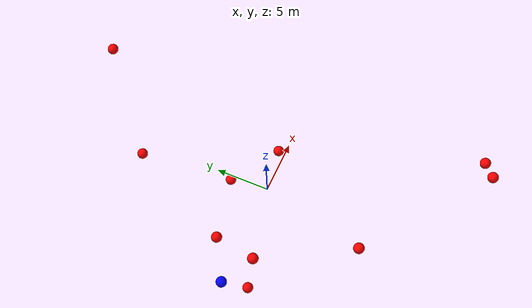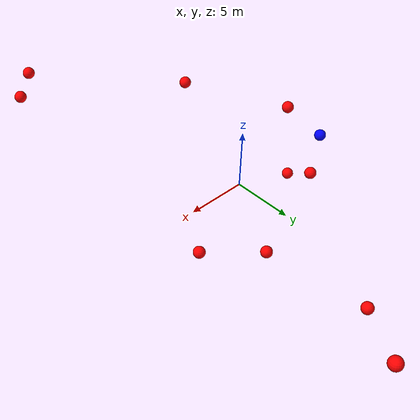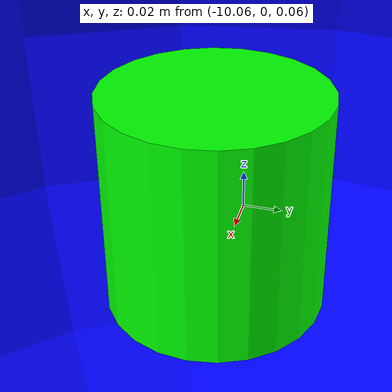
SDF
<?xml version="1.0" ?>
<sdf version="1.8">
    <world name="3d_world">
        <physics name="1ms" type="ode">
            <max_step_size>0.001</max_step_size>
            <real_time_factor>1.0</real_time_factor>
            <real_time_update_rate>1000.0</real_time_update_rate>
        </physics>
        <gravity>0 0 0</gravity>

        <plugin
            filename="gz-sim-physics-system"
            name="gz::sim::v8::systems::Physics">
        </plugin>
        <plugin
            filename="libignition-gazebo-user-commands-system.so"
            name="ignition::gazebo::systems::UserCommands">
        </plugin>
        <plugin
            filename="gz-sim-scene-broadcaster-system"
            name="gz::sim::systems::SceneBroadcaster">
        </plugin>
        <plugin
            filename="gz-sim-sensors-system"
            name="gz::sim::systems::Sensors">
            <render_engine>ogre2</render_engine>
        </plugin>

        <light type="directional" name="sun">
            <cast_shadows>true</cast_shadows>
            <pose>0 0 10 0 0 0</pose>
            <diffuse>0.8 0.8 0.8 1</diffuse>
            <specular>0.2 0.2 0.2 1</specular>
            <attenuation>
                <range>1000</range>
                <constant>0.9</constant>
                <linear>0.01</linear>
                <quadratic>0.001</quadratic>
            </attenuation>
            <direction>-0.5 0.1 -0.9</direction>
        </light>

        <!-- AGENTE -->
        <model name='agente' canonical_link='chassis'>
            <pose relative_to='world'>-10.0 0 0.0 0 0 0</pose>
            <link name='chassis'>
                <pose relative_to='__model__'>0.0 0 0.0 0 0 0</pose>
                <inertial>
                    <mass>1.14395</mass>
                    <inertia>
                        <ixx>0.095329</ixx>
                        <ixy>0</ixy>
                        <ixz>0</ixz>
                        <iyy>0.381317</iyy>
                        <iyz>0</iyz>
                        <izz>0.476646</izz>
                    </inertia>
                </inertial>
                <visual name='visual'>
                    <geometry>
                        <sphere>
                            <radius>0.5</radius>
                        </sphere>
                    </geometry>
                    <material>
                        <ambient>0.0 0.0 1.0 1</ambient>
                        <diffuse>0.0 0.0 1.0 1</diffuse>
                        <specular>0.0 0.0 1.0 1</specular>
                    </material>
                </visual>
                <collision name='collision'>
                    <geometry>
                        <sphere>
                            <radius>0.5</radius>
                        </sphere>
                    </geometry>
                </collision>
                <enable_gravity>false</enable_gravity>
            </link>

            <link name='lidar_link'>
                <pose relative_to='chassis'>0.0 0 0.1 0 0 0</pose>
                <inertial>
                    <mass>0.1</mass>
                    <inertia>
                        <ixx>0.000166667</ixx>
                        <iyy>0.000166667</iyy>
                        <izz>0.000166667</izz>
                    </inertia>
                </inertial>
                <collision name='collision'>
                    <geometry>
                        <cylinder>
                            <radius>0.05</radius>
                            <length>0.1</length>
                        </cylinder>
                    </geometry>
                </collision>
                <visual name='visual'>
                    <geometry>
                        <cylinder>
                            <radius>0.05</radius>
                            <length>0.1</length>
                        </cylinder>
                    </geometry>
                    <material>
                        <ambient>0.0 1.0 0.0 1</ambient>
                        <diffuse>0.0 1.0 0.0 1</diffuse>
                        <specular>0.0 1.0 0.0 1</specular>
                    </material>
                </visual>
                <sensor name="lidar" type="gpu_lidar">
                    <topic>scan</topic>
                    <update_rate>10</update_rate>
                    <lidar>
                        <scan>
                            <horizontal>
                                <samples>5000</samples>
                                <resolution>1</resolution>
                                <min_angle>-3.14159</min_angle>
                                <max_angle>3.14159</max_angle>
                            </horizontal>
                        </scan>
                        <range>
                            <min>0.1</min>
                            <max>10.0</max>
                            <resolution>0.01</resolution>
                        </range>
                    </lidar>
                    <visualize>true</visualize>
                    <always_on>true</always_on>
                    <update_rate>10</update_rate>
                    <pose_frame>lidar</pose_frame>
                </sensor>
                <enable_gravity>false</enable_gravity>
            </link>

            <joint name="lidar_joint" type="fixed">
                <parent>chassis</parent>
                <child>lidar_link</child>
            </joint>

            <plugin
                filename="ignition-gazebo-joint-state-publisher-system"
                name="ignition::gazebo::systems::JointStatePublisher">
            </plugin>
            <plugin
                filename="ignition-gazebo-odometry-publisher-system"
                name="ignition::gazebo::systems::OdometryPublisher">
                <dimensions>3</dimensions>
            </plugin>
            <plugin
                filename="ignition-gazebo-velocity-control-system"
                name="ignition::gazebo::systems::VelocityControl">
                <initial_linear>0.0 0 0</initial_linear>
                <initial_angular>0 0 0.0</initial_angular>
            </plugin>
            <plugin
                filename="libignition-gazebo-pose-publisher-system.so"
                name="ignition::gazebo::systems::PosePublisher">
                <topic>/agente/pose</topic>
                <frame_id>agente</frame_id>
                <update_rate>30</update_rate>
            </plugin>
        </model>

        <!-- OBSTACLE 1 -->
        <model name='obstacle_1' canonical_link='obstacle'>
            <static>false</static>
            <pose relative_to='world'>-3.48 -10.38 3.23 0 0 0</pose>
            <link name='obstacle'>
                <pose relative_to='__model__'>0.0 0 0.0 0 0 0</pose>
                <visual name='visual'>
                    <geometry>
                        <sphere>
                            <radius>0.50</radius>
                        </sphere>
                    </geometry>
                    <material>
                        <ambient>1.0 0.0 0.0 1</ambient>
                        <diffuse>1.0 0.0 0.0 1</diffuse>
                        <specular>1.0 0.0 0.0 1</specular>
                    </material>
                </visual>
                <collision name='collision'>
                    <geometry>
                        <sphere>
                            <radius>0.50</radius>
                        </sphere>
                    </geometry>
                </collision>
                <enable_gravity>false</enable_gravity>
            </link>

            <plugin
                filename="ignition-gazebo-velocity-control-system"
                name="ignition::gazebo::systems::VelocityControl">
                <initial_linear>-0.01 1.91 -0.59</initial_linear>
                <initial_angular>0 0 0</initial_angular>
            </plugin>

            <plugin
                filename="ignition-gazebo-odometry-publisher-system"
                name="ignition::gazebo::systems::OdometryPublisher">
                <dimensions>3</dimensions>
            </plugin>
        </model>

        <!-- OBSTACLE 2 -->
        <model name='obstacle_2' canonical_link='obstacle'>
            <static>false</static>
            <pose relative_to='world'>1.16 4.45 -3.55 0 0 0</pose>
            <link name='obstacle'>
                <pose relative_to='__model__'>0.0 0 0.0 0 0 0</pose>
                <visual name='visual'>
                    <geometry>
                        <sphere>
                            <radius>0.50</radius>
                        </sphere>
                    </geometry>
                    <material>
                        <ambient>1.0 0.0 0.0 1</ambient>
                        <diffuse>1.0 0.0 0.0 1</diffuse>
                        <specular>1.0 0.0 0.0 1</specular>
                    </material>
                </visual>
                <collision name='collision'>
                    <geometry>
                        <sphere>
                            <radius>0.50</radius>
                        </sphere>
                    </geometry>
                </collision>
                <enable_gravity>false</enable_gravity>
            </link>

            <plugin
                filename="ignition-gazebo-velocity-control-system"
                name="ignition::gazebo::systems::VelocityControl">
                <initial_linear>0.33 -0.86 0.69</initial_linear>
                <initial_angular>0 0 0</initial_angular>
            </plugin>

            <plugin
                filename="ignition-gazebo-odometry-publisher-system"
                name="ignition::gazebo::systems::OdometryPublisher">
                <dimensions>3</dimensions>
            </plugin>
        </model>

        <!-- OBSTACLE 3 -->
        <model name='obstacle_3' canonical_link='obstacle'>
            <static>false</static>
            <pose relative_to='world'>7.02 -18.87 4.57 0 0 0</pose>
            <link name='obstacle'>
                <pose relative_to='__model__'>0.0 0 0.0 0 0 0</pose>
                <visual name='visual'>
                    <geometry>
                        <sphere>
                            <radius>0.50</radius>
                        </sphere>
                    </geometry>
                    <material>
                        <ambient>1.0 0.0 0.0 1</ambient>
                        <diffuse>1.0 0.0 0.0 1</diffuse>
                        <specular>1.0 0.0 0.0 1</specular>
                    </material>
                </visual>
                <collision name='collision'>
                    <geometry>
                        <sphere>
                            <radius>0.50</radius>
                        </sphere>
                    </geometry>
                </collision>
                <enable_gravity>false</enable_gravity>
            </link>

            <plugin
                filename="ignition-gazebo-velocity-control-system"
                name="ignition::gazebo::systems::VelocityControl">
                <initial_linear>-0.91 1.73 -0.42</initial_linear>
                <initial_angular>0 0 0</initial_angular>
            </plugin>

            <plugin
                filename="ignition-gazebo-odometry-publisher-system"
                name="ignition::gazebo::systems::OdometryPublisher">
                <dimensions>3</dimensions>
            </plugin>
        </model>

        <!-- OBSTACLE 4 -->
        <model name='obstacle_4' canonical_link='obstacle'>
            <static>false</static>
            <pose relative_to='world'>0.15 13.43 -3.17 0 0 0</pose>
            <link name='obstacle'>
                <pose relative_to='__model__'>0.0 0 0.0 0 0 0</pose>
                <visual name='visual'>
                    <geometry>
                        <sphere>
                            <radius>0.50</radius>
                        </sphere>
                    </geometry>
                    <material>
                        <ambient>1.0 0.0 0.0 1</ambient>
                        <diffuse>1.0 0.0 0.0 1</diffuse>
                        <specular>1.0 0.0 0.0 1</specular>
                    </material>
                </visual>
                <collision name='collision'>
                    <geometry>
                        <sphere>
                            <radius>0.50</radius>
                        </sphere>
                    </geometry>
                </collision>
                <enable_gravity>false</enable_gravity>
            </link>

            <plugin
                filename="ignition-gazebo-velocity-control-system"
                name="ignition::gazebo::systems::VelocityControl">
                <initial_linear>-0.16 -1.94 0.46</initial_linear>
                <initial_angular>0 0 0</initial_angular>
            </plugin>

            <plugin
                filename="ignition-gazebo-odometry-publisher-system"
                name="ignition::gazebo::systems::OdometryPublisher">
                <dimensions>3</dimensions>
            </plugin>
        </model>

        <!-- OBSTACLE 5 -->
        <model name='obstacle_5' canonical_link='obstacle'>
            <static>false</static>
            <pose relative_to='world'>5.57 1.36 -2.95 0 0 0</pose>
            <link name='obstacle'>
                <pose relative_to='__model__'>0.0 0 0.0 0 0 0</pose>
                <visual name='visual'>
                    <geometry>
                        <sphere>
                            <radius>0.50</radius>
                        </sphere>
                    </geometry>
                    <material>
                        <ambient>1.0 0.0 0.0 1</ambient>
                        <diffuse>1.0 0.0 0.0 1</diffuse>
                        <specular>1.0 0.0 0.0 1</specular>
                    </material>
                </visual>
                <collision name='collision'>
                    <geometry>
                        <sphere>
                            <radius>0.50</radius>
                        </sphere>
                    </geometry>
                </collision>
                <enable_gravity>false</enable_gravity>
            </link>

            <plugin
                filename="ignition-gazebo-velocity-control-system"
                name="ignition::gazebo::systems::VelocityControl">
                <initial_linear>-1.86 -0.31 0.67</initial_linear>
                <initial_angular>0 0 0</initial_angular>
            </plugin>

            <plugin
                filename="ignition-gazebo-odometry-publisher-system"
                name="ignition::gazebo::systems::OdometryPublisher">
                <dimensions>3</dimensions>
            </plugin>
        </model>

        <!-- OBSTACLE 6 -->
        <model name='obstacle_6' canonical_link='obstacle'>
            <static>false</static>
            <pose relative_to='world'>-6.00 2.40 -0.62 0 0 0</pose>
            <link name='obstacle'>
                <pose relative_to='__model__'>0.0 0 0.0 0 0 0</pose>
                <visual name='visual'>
                    <geometry>
                        <sphere>
                            <radius>0.50</radius>
                        </sphere>
                    </geometry>
                    <material>
                        <ambient>1.0 0.0 0.0 1</ambient>
                        <diffuse>1.0 0.0 0.0 1</diffuse>
                        <specular>1.0 0.0 0.0 1</specular>
                    </material>
                </visual>
                <collision name='collision'>
                    <geometry>
                        <sphere>
                            <radius>0.50</radius>
                        </sphere>
                    </geometry>
                </collision>
                <enable_gravity>false</enable_gravity>
            </link>

            <plugin
                filename="ignition-gazebo-velocity-control-system"
                name="ignition::gazebo::systems::VelocityControl">
                <initial_linear>1.78 -0.44 0.11</initial_linear>
                <initial_angular>0 0 0</initial_angular>
            </plugin>

            <plugin
                filename="ignition-gazebo-odometry-publisher-system"
                name="ignition::gazebo::systems::OdometryPublisher">
                <dimensions>3</dimensions>
            </plugin>
        </model>

        <!-- OBSTACLE 7 -->
        <model name='obstacle_7' canonical_link='obstacle'>
            <static>false</static>
            <pose relative_to='world'>6.79 19.28 2.40 0 0 0</pose>
            <link name='obstacle'>
                <pose relative_to='__model__'>0.0 0 0.0 0 0 0</pose>
                <visual name='visual'>
                    <geometry>
                        <sphere>
                            <radius>0.50</radius>
                        </sphere>
                    </geometry>
                    <material>
                        <ambient>1.0 0.0 0.0 1</ambient>
                        <diffuse>1.0 0.0 0.0 1</diffuse>
                        <specular>1.0 0.0 0.0 1</specular>
                    </material>
                </visual>
                <collision name='collision'>
                    <geometry>
                        <sphere>
                            <radius>0.50</radius>
                        </sphere>
                    </geometry>
                </collision>
                <enable_gravity>false</enable_gravity>
            </link>

            <plugin
                filename="ignition-gazebo-velocity-control-system"
                name="ignition::gazebo::systems::VelocityControl">
                <initial_linear>-0.26 -1.97 -0.24</initial_linear>
                <initial_angular>0 0 0</initial_angular>
            </plugin>

            <plugin
                filename="ignition-gazebo-odometry-publisher-system"
                name="ignition::gazebo::systems::OdometryPublisher">
                <dimensions>3</dimensions>
            </plugin>
        </model>

        <!-- OBSTACLE 8 -->
        <model name='obstacle_8' canonical_link='obstacle'>
            <static>false</static>
            <pose relative_to='world'>-8.10 -1.55 -4.21 0 0 0</pose>
            <link name='obstacle'>
                <pose relative_to='__model__'>0.0 0 0.0 0 0 0</pose>
                <visual name='visual'>
                    <geometry>
                        <sphere>
                            <radius>0.50</radius>
                        </sphere>
                    </geometry>
                    <material>
                        <ambient>1.0 0.0 0.0 1</ambient>
                        <diffuse>1.0 0.0 0.0 1</diffuse>
                        <specular>1.0 0.0 0.0 1</specular>
                    </material>
                </visual>
                <collision name='collision'>
                    <geometry>
                        <sphere>
                            <radius>0.50</radius>
                        </sphere>
                    </geometry>
                </collision>
                <enable_gravity>false</enable_gravity>
            </link>

            <plugin
                filename="ignition-gazebo-velocity-control-system"
                name="ignition::gazebo::systems::VelocityControl">
                <initial_linear>1.89 0.23 0.62</initial_linear>
                <initial_angular>0 0 0</initial_angular>
            </plugin>

            <plugin
                filename="ignition-gazebo-odometry-publisher-system"
                name="ignition::gazebo::systems::OdometryPublisher">
                <dimensions>3</dimensions>
            </plugin>
        </model>

        <!-- OBSTACLE 9 -->
        <model name='obstacle_9' canonical_link='obstacle'>
            <static>false</static>
            <pose relative_to='world'>-7.87 -2.21 2.77 0 0 0</pose>
            <link name='obstacle'>
                <pose relative_to='__model__'>0.0 0 0.0 0 0 0</pose>
                <visual name='visual'>
                    <geometry>
                        <sphere>
                            <radius>0.50</radius>
                        </sphere>
                    </geometry>
                    <material>
                        <ambient>1.0 0.0 0.0 1</ambient>
                        <diffuse>1.0 0.0 0.0 1</diffuse>
                        <specular>1.0 0.0 0.0 1</specular>
                    </material>
                </visual>
                <collision name='collision'>
                    <geometry>
                        <sphere>
                            <radius>0.50</radius>
                        </sphere>
                    </geometry>
                </collision>
                <enable_gravity>false</enable_gravity>
            </link>

            <plugin
                filename="ignition-gazebo-velocity-control-system"
                name="ignition::gazebo::systems::VelocityControl">
                <initial_linear>1.88 0.43 -0.53</initial_linear>
                <initial_angular>0 0 0</initial_angular>
            </plugin>

            <plugin
                filename="ignition-gazebo-odometry-publisher-system"
                name="ignition::gazebo::systems::OdometryPublisher">
                <dimensions>3</dimensions>
            </plugin>
        </model>

        <!-- OBSTACLE 10 -->
        <model name='obstacle_10' canonical_link='obstacle'>
            <static>false</static>
            <pose relative_to='world'>8.74 -17.74 3.43 0 0 0</pose>
            <link name='obstacle'>
                <pose relative_to='__model__'>0.0 0 0.0 0 0 0</pose>
                <visual name='visual'>
                    <geometry>
                        <sphere>
                            <radius>0.50</radius>
                        </sphere>
                    </geometry>
                    <material>
                        <ambient>1.0 0.0 0.0 1</ambient>
                        <diffuse>1.0 0.0 0.0 1</diffuse>
                        <specular>1.0 0.0 0.0 1</specular>
                    </material>
                </visual>
                <collision name='collision'>
                    <geometry>
                        <sphere>
                            <radius>0.50</radius>
                        </sphere>
                    </geometry>
                </collision>
                <enable_gravity>false</enable_gravity>
            </link>

            <plugin
                filename="ignition-gazebo-velocity-control-system"
                name="ignition::gazebo::systems::VelocityControl">
                <initial_linear>-0.17 1.96 -0.38</initial_linear>
                <initial_angular>0 0 0</initial_angular>
            </plugin>

            <plugin
                filename="ignition-gazebo-odometry-publisher-system"
                name="ignition::gazebo::systems::OdometryPublisher">
                <dimensions>3</dimensions>
            </plugin>
        </model>

    </world>
</sdf>
